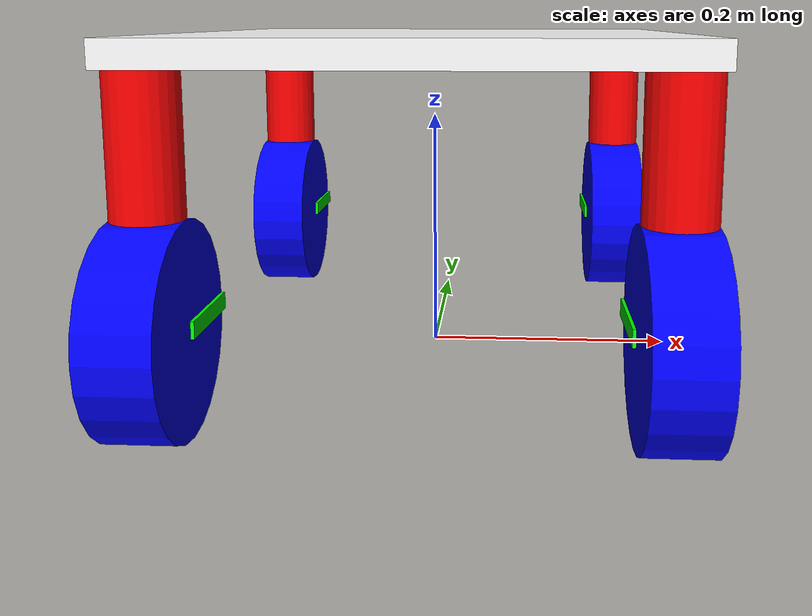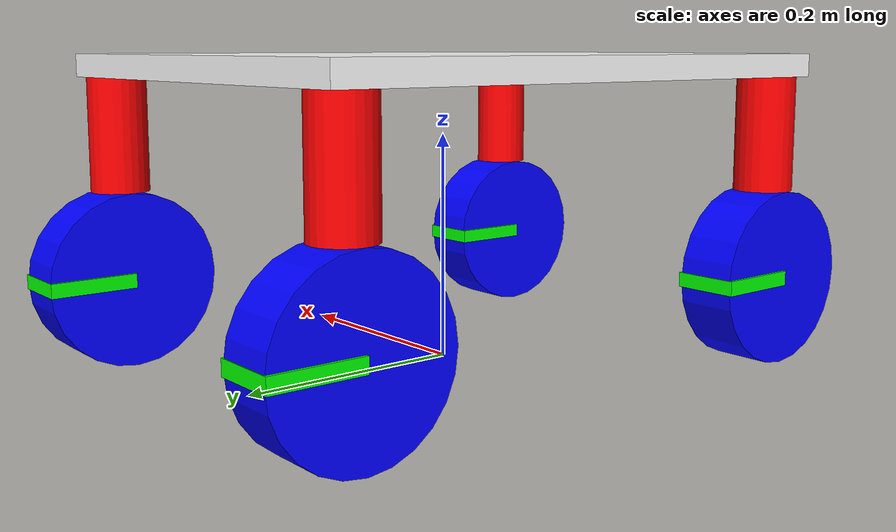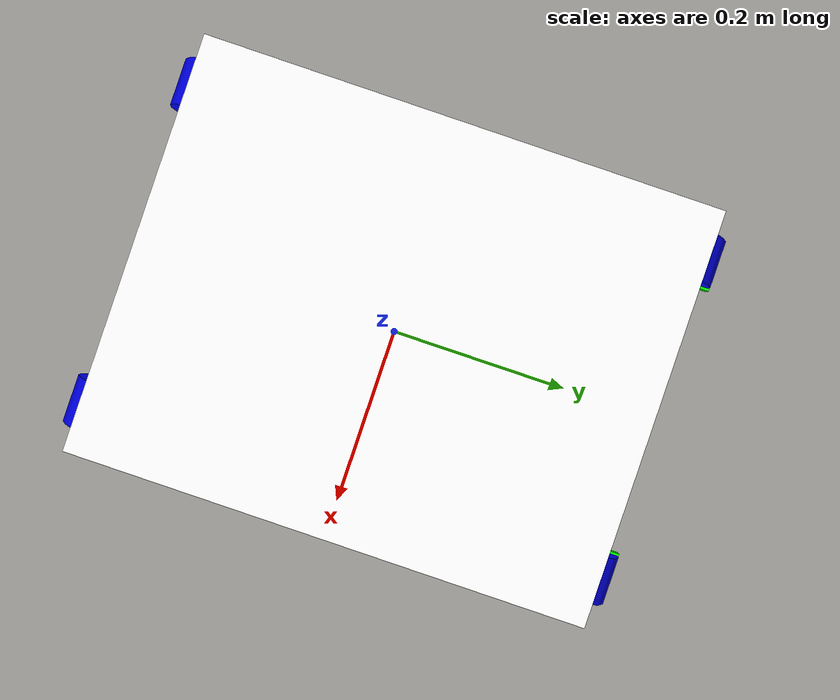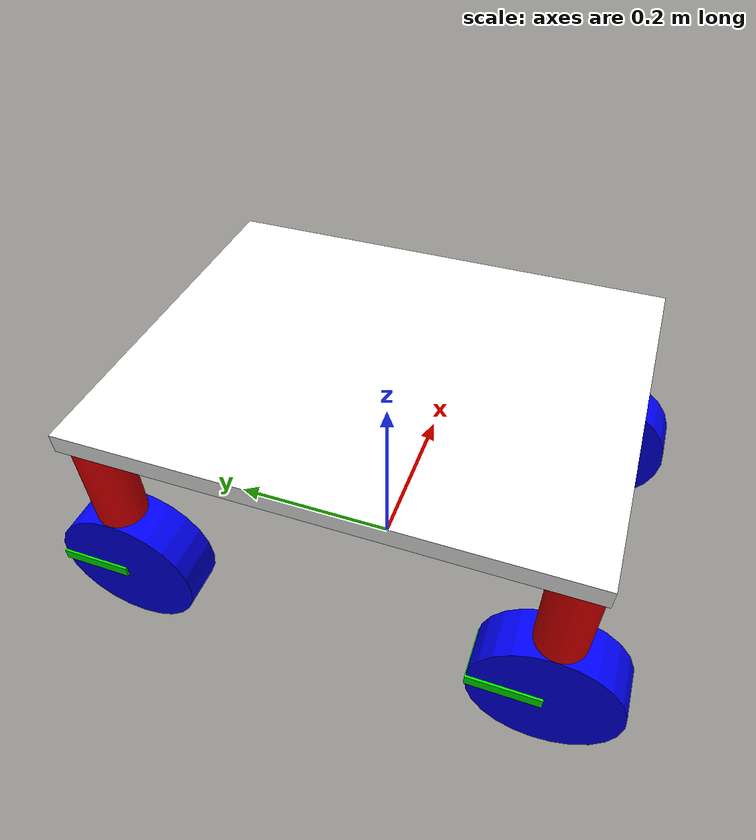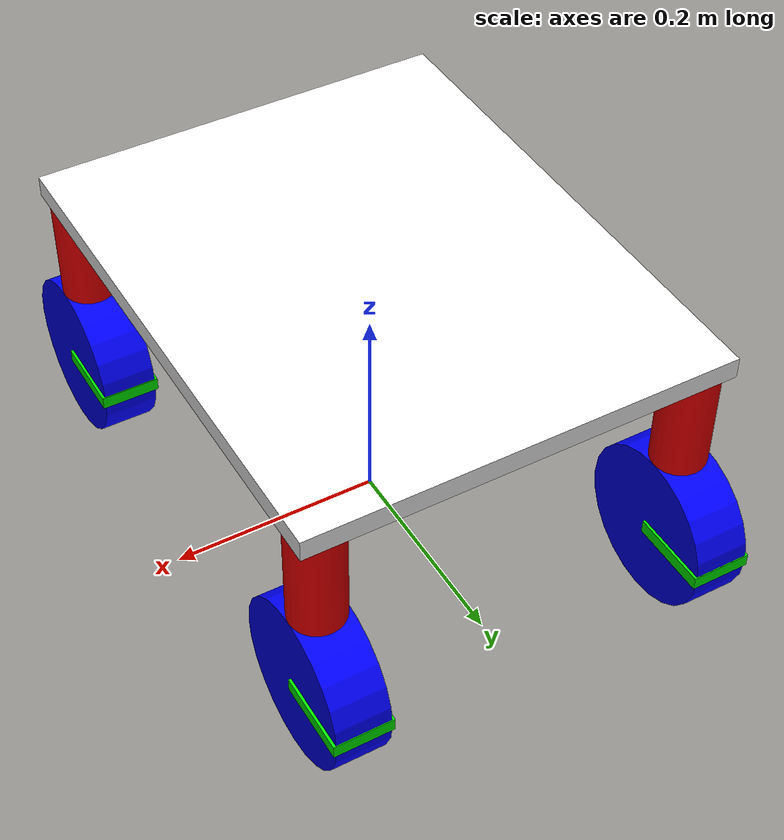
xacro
<?xml version="1.0"?>
<robot xmlns:xacro="http://www.ros.org/wiki/xacro" name="miniAGV">

    <xacro:include filename="$(find four_wheel_steering_robot_description)/urdf/gazebo_control.xacro" />

    <xacro:include filename="$(find four_wheel_steering_robot_description)/urdf/robot_core_design.xacro" />

</robot>

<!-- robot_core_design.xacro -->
<robot xmlns:xacro="http://www.ros.org/wiki/xacro">

    <xacro:include filename="$(find four_wheel_steering_robot_description)/urdf/chassis.xacro"/>
    <xacro:include filename="$(find four_wheel_steering_robot_description)/urdf/wheel_module.xacro"/>

    <xacro:chassis />

    <xacro:wheel_module suffix="FL" parent_link="chassis" reflectx="-1" reflecty="1" />
    <xacro:wheel_module suffix="FR" parent_link="chassis" reflectx="1" reflecty="1" />
    <xacro:wheel_module suffix="RL" parent_link="chassis" reflectx="-1" reflecty="-1" />
    <xacro:wheel_module suffix="RR" parent_link="chassis" reflectx="1" reflecty="-1" />

</robot>

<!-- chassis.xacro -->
<robot xmlns:xacro="http://www.ros.org/wiki/xacro">

    <xacro:include filename="robot_constants.xacro" />
    <xacro:include filename="inertial_macros.xacro" />

    <!-- CHASSIS-->

    <xacro:macro name="chassis">

        <gazebo reference="chassis">
            <mu1>0.2</mu1>
            <mu2>0.2</mu2>
            <material>Gazebo/Green</material>
        </gazebo>

        <link name="base_link">
        </link>

        <joint name="chassis_joint" type="fixed">
            <parent link="base_link" />
            <child link="chassis" />
            <origin xyz="0 0 0.25" />
        </joint>

        <link name="chassis">
            <visual>
                <origin xyz="0 0 ${chassis_link_height/2}" />
                <geometry>
                    <box
                        size="${chassis_link_length} ${chassis_link_breadth} ${chassis_link_height}" />
                </geometry>
                <material name="white">
                    <color rgba="1 1 1 1" />
                </material>
            </visual>
            <collision>
                <origin xyz="0 0 ${chassis_link_height/2}" />
                <geometry>
                    <box
                        size="${chassis_link_length} ${chassis_link_breadth} ${chassis_link_height}" />
                </geometry>
            </collision>
            <xacro:inertial_box mass="0.5" x="${chassis_link_length}" y="${chassis_link_breadth}"
                z="${chassis_link_height}">
                <origin xyz="0 0 ${chassis_link_height/2}" rpy="0 0 0" />
            </xacro:inertial_box>
        </link>

    </xacro:macro>

</robot>

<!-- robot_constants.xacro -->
<robot xmlns:xacro="http://www.ros.org/wiki/xacro">

    <!-- LINK DIMENSIONS-->
    <xacro:property name="chassis_link_length" value="0.4" />
    <xacro:property name="chassis_link_breadth" value="0.5" />
    <xacro:property name="chassis_link_height" value="0.02" />

    <xacro:property name="wheel_support_link_radius" value="0.0254" />
    <xacro:property name="wheel_support_link_length" value="0.1" />

    <xacro:property name="wheel_link_radius" value="0.0762" />
    <xacro:property name="wheel_link_width" value="0.0508" />

    <!-- JOINT LIMITS-->

    <xacro:property name="limits_revolute_upper" value="3.14" />
    <xacro:property name="limits_revolute_lower" value="-3.14" />
    <xacro:property name="limits_revolute_velocity" value="3.14" />
    <xacro:property name="limits_revolute_effort" value="300" />

</robot>

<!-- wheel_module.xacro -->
<robot xmlns:xacro="http://www.ros.org/wiki/xacro">

    <xacro:include filename="$(find four_wheel_steering_robot_description)/urdf/robot_constants.xacro" />
    <xacro:include filename="$(find four_wheel_steering_robot_description)/urdf/inertial_macros.xacro" />

    <!-- WHEEL MODULE-->

    <xacro:macro name="wheel_module" params="suffix parent_link reflectx reflecty">

        <gazebo reference="wheel_support${suffix}">
            <mu1>0.05</mu1>
            <mu2>0.05</mu2>
            <material>Gazebo/Red</material>
        </gazebo>

        <gazebo reference="wheel${suffix}">
            <mu1>1.2</mu1>
            <mu2>1.2</mu2>
            <material>Gazebo/Blue</material>
        </gazebo>

        <gazebo reference="marker${suffix}">
            <material>Gazebo/Green</material>
        </gazebo>

        <!-- WHEEL SUPPPORT-->

        <joint name="wheel_support${suffix}_joint" type="revolute">
            <parent link="${parent_link}" />
            <child link="wheel_support${suffix}" />
            <origin
                xyz="${reflectx * (chassis_link_length/2 - wheel_support_link_radius)} ${reflecty * (chassis_link_breadth/2 - wheel_support_link_radius)} 0" />
            <axis xyz="0 0 -1" />
            <limit effort="${limits_revolute_effort}" velocity="${limits_revolute_velocity}"
                lower="${limits_revolute_lower}" upper="${limits_revolute_upper}" />
        </joint>

        <link name="wheel_support${suffix}">
            <visual>
                <origin xyz="0 0 ${-wheel_support_link_length/2}" />
                <geometry>
                    <cylinder radius="${wheel_support_link_radius}"
                        length="${wheel_support_link_length}" />
                </geometry>
                <material name="red">
                    <color rgba="1 0 0 1" />
                </material>
            </visual>
            <collision>
                <origin xyz="0 0 ${-wheel_support_link_length/2}" />
                <geometry>
                    <cylinder radius="${wheel_support_link_radius}"
                        length="${wheel_support_link_length}" />
                </geometry>
            </collision>
            <xacro:inertial_cylinder mass="0.08" radius="${wheel_support_link_radius}"
                length="${wheel_support_link_length}">
                <origin xyz="0 0 ${-wheel_support_link_length/2}" rpy="0 0 0" />
            </xacro:inertial_cylinder>
        </link>

        <transmission name="trans_chassis_wheel_support${suffix}" type="SimpleTransmission">
            <type>transmission_interface/SimpleTransmission</type>
            <actuator name="motor_steer${suffix}_joint">
                <hardwareInterface>hardware_interface/PositionJointInterface</hardwareInterface>
                <mechanicalReduction>1</mechanicalReduction>
            </actuator>
            <joint name="wheel_support${suffix}_joint">
                <hardwareInterface>hardware_interface/PositionJointInterface</hardwareInterface>
            </joint>
        </transmission>

        <!-- WHEEL-->

        <joint name="wheel${suffix}_joint" type="continuous">
            <parent link="wheel_support${suffix}" />
            <child link="wheel${suffix}" />
            <origin xyz="0 0 ${-wheel_support_link_length - wheel_link_radius}"
                rpy="${-pi/2} 0 ${pi/2}" />
            <axis xyz="0 0 1" />
        </joint>

        <link name="wheel${suffix}">
            <visual>
                <origin xyz="0 0 0" />
                <geometry>
                    <cylinder radius="${wheel_link_radius}" length="${wheel_link_width}" />
                </geometry>
                <material name="blue">
                    <color rgba="0 0 1 1" />
                </material>
            </visual>
            <collision>
                <origin xyz="0 0 0" />
                <geometry>
                    <cylinder radius="${wheel_link_radius}" length="${wheel_link_width}" />
                </geometry>
            </collision>
            <xacro:inertial_cylinder mass="0.1" radius="${wheel_link_radius}"
                length="${wheel_link_width}">
                <origin xyz="0 0 0" rpy="0 0 0" />
            </xacro:inertial_cylinder>
        </link>

        <joint name="marker${suffix}_joint" type="fixed">
            <parent link="wheel${suffix}"/>
            <child link="marker${suffix}"/>
            <origin xyz="${wheel_link_radius/2} 0 0"/>
        </joint>

        <link name="marker${suffix}">
            <visual>
                <origin xyz="0 0 0"/>
                <geometry>
                    <box size="${wheel_link_radius} ${wheel_link_radius/6} ${wheel_link_width + wheel_link_width*0.1}"/>
                </geometry>
                <material name="markerMaterial">
                    <color rgba="0 1 0 1"/>
                </material>
            </visual>
        </link>

        <transmission name="trans_wheel_support${suffix}_wheel${suffix}" type="SimpleTransmission">
            <type>transmission_interface/SimpleTransmission</type>
            <actuator name="motor_wheel${suffix}_joint">
                <hardwareInterface>hardware_interface/VelocityJointInterface</hardwareInterface>
                <mechanicalReduction>1</mechanicalReduction>
            </actuator>
            <joint name="wheel${suffix}_joint">
                <hardwareInterface>hardware_interface/VelocityJointInterface</hardwareInterface>
            </joint>
        </transmission>

    </xacro:macro>

</robot>
